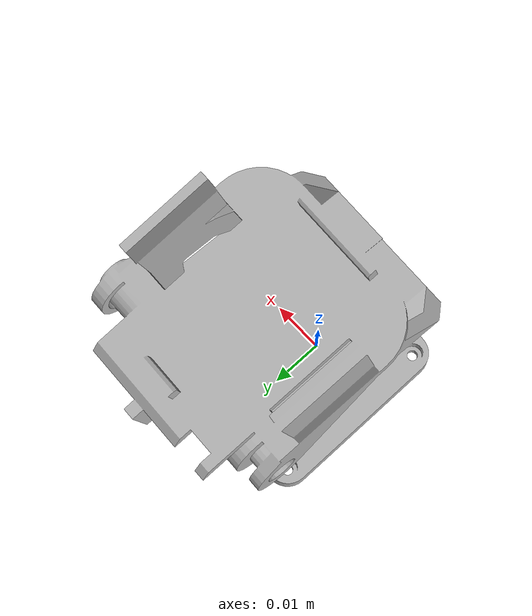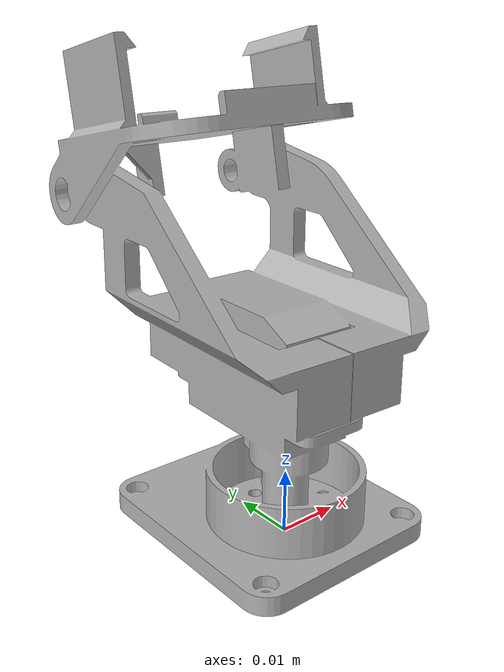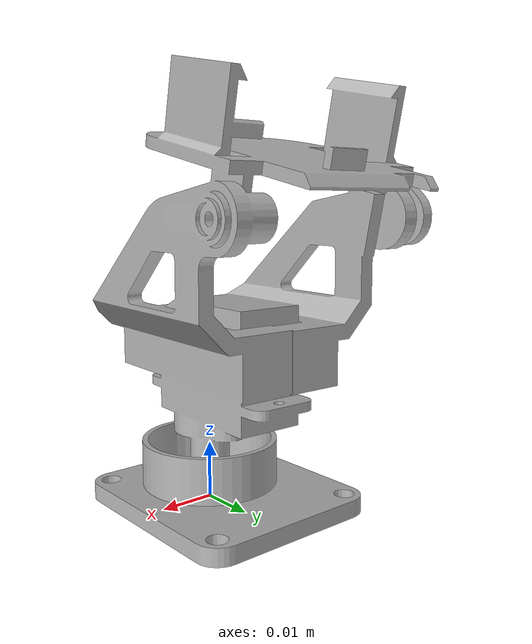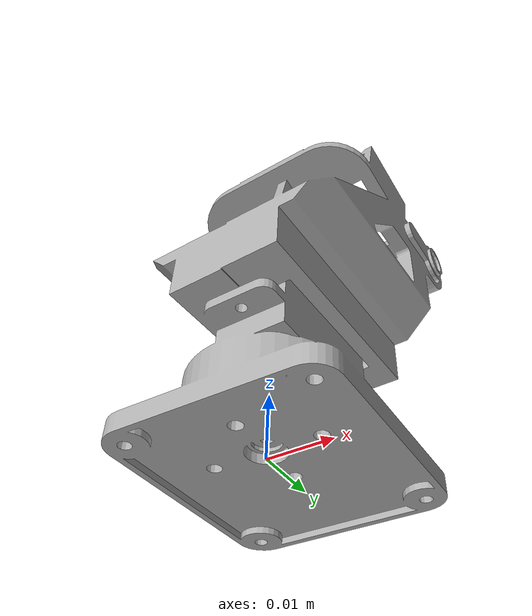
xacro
<?xml version="1.0" ?>
<robot name="robotic_arm_2dof" xmlns:xacro="http://www.ros.org/wiki/xacro">

<xacro:include filename="$(find robotic_arm_2dof_description)/urdf/materials.xacro" />
<xacro:include filename="$(find robotic_arm_2dof_description)/urdf/robotic_arm_2dof.trans" />
<xacro:include filename="$(find robotic_arm_2dof_description)/urdf/robotic_arm_2dof.gazebo" />
<link name="base_link">
  <inertial>
    <origin xyz="-8.617446821637219e-05 0.007840892791304278 0.030250441233718228" rpy="0 0 0"/>
    <mass value="0.15593342534025714"/>
    <inertia ixx="7.3e-05" iyy="6.6e-05" izz="3.3e-05" ixy="1e-06" iyz="-1.4e-05" ixz="2e-06"/>
  </inertial>
  <visual>
    <origin xyz="0 0 0" rpy="0 0 0"/>
    <geometry>
      <mesh filename="package://robotic_arm_2dof_description/meshes/base_link.stl" scale="0.001 0.001 0.001"/>
    </geometry>
    <material name="silver"/>
  </visual>
  <collision>
    <origin xyz="0 0 0" rpy="0 0 0"/>
    <geometry>
      <mesh filename="package://robotic_arm_2dof_description/meshes/base_link.stl" scale="0.001 0.001 0.001"/>
    </geometry>
  </collision>
</link>

</robot>

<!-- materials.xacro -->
<robot name="robotic_arm_2dof" xmlns:xacro="http://www.ros.org/wiki/xacro" >

<material name="silver">
  <color rgba="0.700 0.700 0.700 1.000"/>
</material>

</robot>

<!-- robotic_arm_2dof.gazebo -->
<robot name="robotic_arm_2dof" xmlns:xacro="http://www.ros.org/wiki/xacro" >

<xacro:property name="body_color" value="Gazebo/Silver" />

<gazebo>
  <plugin name="control" filename="libgazebo_ros_control.so"/>
</gazebo>
<gazebo reference="base_link">
  <material>${body_color}</material>
  <mu1>0.2</mu1>
  <mu2>0.2</mu2>
  <selfCollide>true</selfCollide>
  <gravity>true</gravity>
</gazebo>

</robot>
